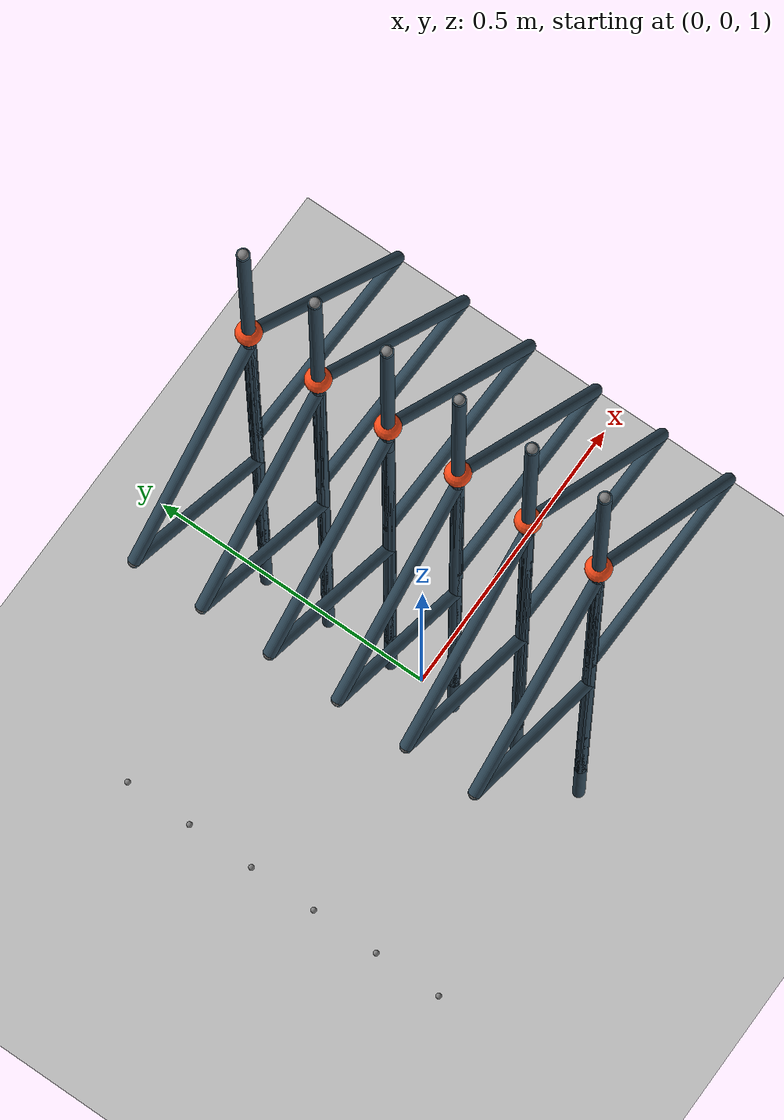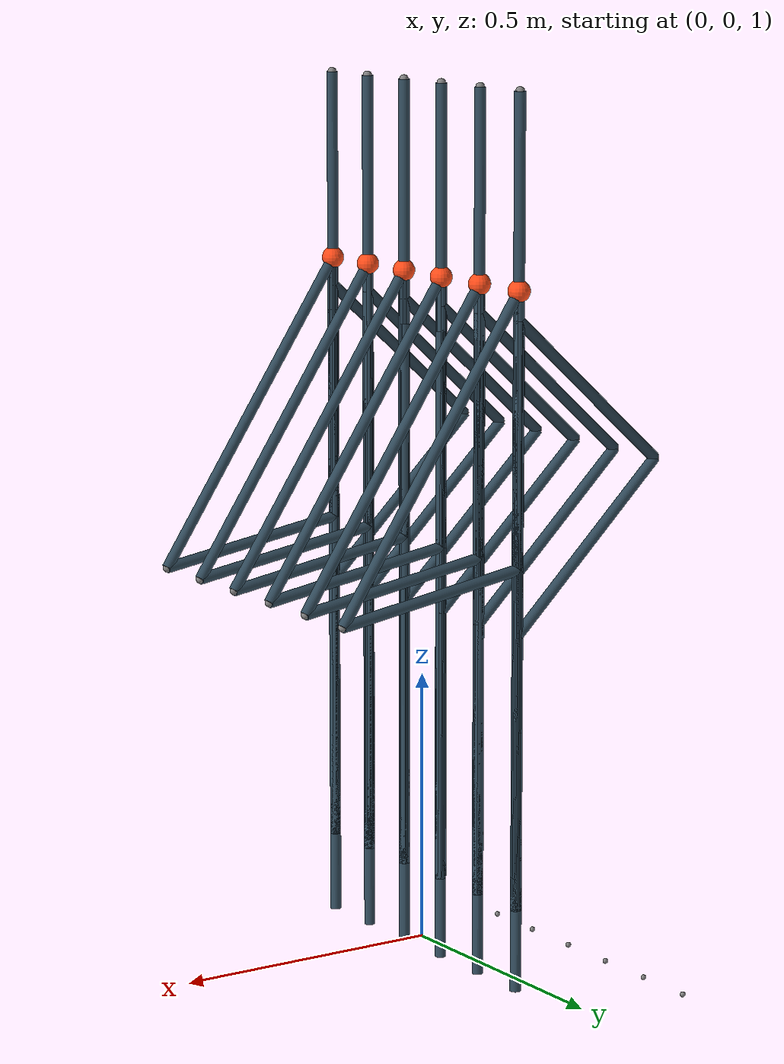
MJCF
<mujoco model="Strandbeest_AllLegs">

  <compiler angle="radian" inertiafromgeom="true" autolimits="true"/>

  <option gravity="0 0 -9.81"
          timestep="0.0005"
          integrator="implicitfast"
          iterations="800"
          solver="Newton"
          tolerance="1e-12"
          noslip_iterations="10"
          noslip_tolerance="1e-10"/>

  <visual>
    <rgba haze="0.15 0.25 0.35 1"/>
  </visual>

  <default>
    <joint damping="0.5" armature="0.005"/>
    <geom contype="0" conaffinity="0" friction="0.8 0.1 0.1" rgba="0.5 0.5 0.5 1" density="500"/>
  </default>

  <asset>
    <material name="col_2F4858" rgba="0.184 0.282 0.345 1"/>
    <material name="orange"    rgba="1.0 0.639 0.098 1"/>
  </asset>

  <worldbody>
    <body name="crossbar" pos="0 0 0.9">
      <site name="base_leg1_site" pos="-0.38 -0.30 0" size="0.005"/>
      <site name="base_leg2_site" pos="-0.38 -0.18 0" size="0.005"/>
      <site name="base_leg3_site" pos="-0.38 -0.06 0" size="0.005"/>
      <site name="base_leg4_site" pos="-0.38  0.06 0" size="0.005"/>
      <site name="base_leg5_site" pos="-0.38  0.18 0" size="0.005"/>
      <site name="base_leg6_site" pos="-0.38  0.30 0" size="0.005"/>

      <body name="crank_axle_leg1" pos="0 -0.30 0.078">
        <joint name="joint_crossbar_crank_leg1" type="hinge" axis="0 1 0"/>
        <body name="bar_m_leg1" pos="0 0 0" euler="0 0.000000 0">
          <geom name="bar_m_geom_leg1" type="cylinder" size="0.01 0.075" pos="0 0 0.075" material="col_2F4858"/>
          <body name="bar_j_leg1" pos="0 0 0.15">
            <joint name="joint_m_j_leg1" type="hinge" axis="0 1 0"/>
            <geom name="bar_j_geom_leg1" type="cylinder" size="0.01 0.25" pos="0 0 0.25" material="col_2F4858"/>
            <body name="bar_k_leg1" pos="0 0 0">
              <joint name="joint_j_k_leg1" type="hinge" axis="0 1 0"/>
              <geom name="bar_k_geom_leg1" type="cylinder" size="0.01 0.3095" pos="0 0 0.3095" material="col_2F4858"/>
              <body name="bar_c_leg1" pos="0 0 0.619">
                <joint name="joint_k_c_leg1" type="hinge" axis="0 1 0"/>
                <geom name="bar_c_geom_leg1" type="cylinder" size="0.01 0.1965" pos="0 0 0.1965" material="col_2F4858"/>
                <site name="bar_c_tip_leg1" pos="0 0 0.393" size="0.008"/>
              </body>
              <body name="bars_g_h_i_leg1" pos="0 0 0.619">
                <joint name="joint_k_i_leg1" type="hinge" axis="0 1 0"/>
                <geom name="ghi_g_leg1" type="cylinder" size="0.01 0.245" pos="0 0 0.245" material="col_2F4858"/>
                <geom name="ghi_h_leg1" type="cylinder" size="0.01 0.1835" pos="0.1812 0 -0.0291" euler="0 1.73 0" material="col_2F4858"/>
                <geom name="ghi_i_leg1" type="cylinder" size="0.01 0.3285" pos="0.1811 0 0.2159" euler="0 2.5576 0" material="col_2F4858"/>
                <geom name="foot_leg1" type="sphere" size="0.02" pos="0 0 0.49" contype="1" conaffinity="1" rgba="1.0 0.3 0.1 1"/>
                <site name="ghi_loopsite_leg1" pos="0.3624 0 -0.0582" size="0.008"/>
              </body>
            </body>
            <body name="bars_b_d_e_leg1" pos="0 0 0.50">
              <joint name="joint_j_e_leg1" type="hinge" axis="0 1 0"/>
              <geom name="bde_b_leg1" type="cylinder" size="0.01 0.279" pos="0 0 0.279" material="col_2F4858"/>
              <geom name="bde_d_leg1" type="cylinder" size="0.01 0.2005" pos="-0.1488 0 0.4236" euler="0 -2.3056 0" material="col_2F4858"/>
              <geom name="bde_e_leg1" type="cylinder" size="0.01 0.2075" pos="-0.1489 0 0.1446" euler="0 -0.8 0" material="col_2F4858"/>
              <site name="bde_loopsite_leg1" pos="-0.2978 0 0.2892" size="0.008"/>
              <body name="bar_f_leg1" pos="0 0 0.558">
                <joint name="joint_e_f_leg1" type="hinge" axis="0 1 0"/>
                <geom name="bar_f_geom_leg1" type="cylinder" size="0.01 0.197" pos="0 0 0.197" material="col_2F4858"/>
                <site name="bar_f_tip_leg1" pos="0 0 0.394" size="0.008"/>
              </body>
            </body>
          </body>
        </body>
      </body>

      <body name="crank_axle_leg2" pos="0 -0.18 0.078">
        <joint name="joint_crossbar_crank_leg2" type="hinge" axis="0 1 0"/>
        <body name="bar_m_leg2" pos="0 0 0" euler="0 0 0">
          <geom name="bar_m_geom_leg2" type="cylinder" size="0.01 0.075" pos="0 0 0.075" material="col_2F4858"/>
          <body name="bar_j_leg2" pos="0 0 0.15">
            <joint name="joint_m_j_leg2" type="hinge" axis="0 1 0"/>
            <geom name="bar_j_geom_leg2" type="cylinder" size="0.01 0.25" pos="0 0 0.25" material="col_2F4858"/>
            <body name="bar_k_leg2" pos="0 0 0">
              <joint name="joint_j_k_leg2" type="hinge" axis="0 1 0"/>
              <geom name="bar_k_geom_leg2" type="cylinder" size="0.01 0.3095" pos="0 0 0.3095" material="col_2F4858"/>
              <body name="bar_c_leg2" pos="0 0 0.619">
                <joint name="joint_k_c_leg2" type="hinge" axis="0 1 0"/>
                <geom name="bar_c_geom_leg2" type="cylinder" size="0.01 0.1965" pos="0 0 0.1965" material="col_2F4858"/>
                <site name="bar_c_tip_leg2" pos="0 0 0.393" size="0.008"/>
              </body>
              <body name="bars_g_h_i_leg2" pos="0 0 0.619">
                <joint name="joint_k_i_leg2" type="hinge" axis="0 1 0"/>
                <geom name="ghi_g_leg2" type="cylinder" size="0.01 0.245" pos="0 0 0.245" material="col_2F4858"/>
                <geom name="ghi_h_leg2" type="cylinder" size="0.01 0.1835" pos="0.1812 0 -0.0291" euler="0 1.73 0" material="col_2F4858"/>
                <geom name="ghi_i_leg2" type="cylinder" size="0.01 0.3285" pos="0.1811 0 0.2159" euler="0 2.5576 0" material="col_2F4858"/>
                <geom name="foot_leg2" type="sphere" size="0.02" pos="0 0 0.49" contype="1" conaffinity="1" rgba="1.0 0.3 0.1 1"/>
                <site name="ghi_loopsite_leg2" pos="0.3624 0 -0.0582" size="0.008"/>
              </body>
            </body>
            <body name="bars_b_d_e_leg2" pos="0 0 0.50">
              <joint name="joint_j_e_leg2" type="hinge" axis="0 1 0"/>
              <geom name="bde_b_leg2" type="cylinder" size="0.01 0.279" pos="0 0 0.279" material="col_2F4858"/>
              <geom name="bde_d_leg2" type="cylinder" size="0.01 0.2005" pos="-0.1488 0 0.4236" euler="0 -2.3056 0" material="col_2F4858"/>
              <geom name="bde_e_leg2" type="cylinder" size="0.01 0.2075" pos="-0.1489 0 0.1446" euler="0 -0.8 0" material="col_2F4858"/>
              <site name="bde_loopsite_leg2" pos="-0.2978 0 0.2892" size="0.008"/>
              <body name="bar_f_leg2" pos="0 0 0.558">
                <joint name="joint_e_f_leg2" type="hinge" axis="0 1 0"/>
                <geom name="bar_f_geom_leg2" type="cylinder" size="0.01 0.197" pos="0 0 0.197" material="col_2F4858"/>
                <site name="bar_f_tip_leg2" pos="0 0 0.394" size="0.008"/>
              </body>
            </body>
          </body>
        </body>
      </body>

      <body name="crank_axle_leg3" pos="0 -0.06 0.078">
        <joint name="joint_crossbar_crank_leg3" type="hinge" axis="0 1 0"/>
        <body name="bar_m_leg3" pos="0 0 0" euler="0 0 0">
          <geom name="bar_m_geom_leg3" type="cylinder" size="0.01 0.075" pos="0 0 0.075" material="col_2F4858"/>
          <body name="bar_j_leg3" pos="0 0 0.15">
            <joint name="joint_m_j_leg3" type="hinge" axis="0 1 0"/>
            <geom name="bar_j_geom_leg3" type="cylinder" size="0.01 0.25" pos="0 0 0.25" material="col_2F4858"/>
            <body name="bar_k_leg3" pos="0 0 0">
              <joint name="joint_j_k_leg3" type="hinge" axis="0 1 0"/>
              <geom name="bar_k_geom_leg3" type="cylinder" size="0.01 0.3095" pos="0 0 0.3095" material="col_2F4858"/>
              <body name="bar_c_leg3" pos="0 0 0.619">
                <joint name="joint_k_c_leg3" type="hinge" axis="0 1 0"/>
                <geom name="bar_c_geom_leg3" type="cylinder" size="0.01 0.1965" pos="0 0 0.1965" material="col_2F4858"/>
                <site name="bar_c_tip_leg3" pos="0 0 0.393" size="0.008"/>
              </body>
              <body name="bars_g_h_i_leg3" pos="0 0 0.619">
                <joint name="joint_k_i_leg3" type="hinge" axis="0 1 0"/>
                <geom name="ghi_g_leg3" type="cylinder" size="0.01 0.245" pos="0 0 0.245" material="col_2F4858"/>
                <geom name="ghi_h_leg3" type="cylinder" size="0.01 0.1835" pos="0.1812 0 -0.0291" euler="0 1.73 0" material="col_2F4858"/>
                <geom name="ghi_i_leg3" type="cylinder" size="0.01 0.3285" pos="0.1811 0 0.2159" euler="0 2.5576 0" material="col_2F4858"/>
                <geom name="foot_leg3" type="sphere" size="0.02" pos="0 0 0.49" contype="1" conaffinity="1" rgba="1.0 0.3 0.1 1"/>
                <site name="ghi_loopsite_leg3" pos="0.3624 0 -0.0582" size="0.008"/>
              </body>
            </body>
            <body name="bars_b_d_e_leg3" pos="0 0 0.50">
              <joint name="joint_j_e_leg3" type="hinge" axis="0 1 0"/>
              <geom name="bde_b_leg3" type="cylinder" size="0.01 0.279" pos="0 0 0.279" material="col_2F4858"/>
              <geom name="bde_d_leg3" type="cylinder" size="0.01 0.2005" pos="-0.1488 0 0.4236" euler="0 -2.3056 0" material="col_2F4858"/>
              <geom name="bde_e_leg3" type="cylinder" size="0.01 0.2075" pos="-0.1489 0 0.1446" euler="0 -0.8 0" material="col_2F4858"/>
              <site name="bde_loopsite_leg3" pos="-0.2978 0 0.2892" size="0.008"/>
              <body name="bar_f_leg3" pos="0 0 0.558">
                <joint name="joint_e_f_leg3" type="hinge" axis="0 1 0"/>
                <geom name="bar_f_geom_leg3" type="cylinder" size="0.01 0.197" pos="0 0 0.197" material="col_2F4858"/>
                <site name="bar_f_tip_leg3" pos="0 0 0.394" size="0.008"/>
              </body>
            </body>
          </body>
        </body>
      </body>

      <body name="crank_axle_leg4" pos="0 0.06 0.078">
        <joint name="joint_crossbar_crank_leg4" type="hinge" axis="0 1 0"/>
        <body name="bar_m_leg4" pos="0 0 0" euler="0 0 0">
          <geom name="bar_m_geom_leg4" type="cylinder" size="0.01 0.075" pos="0 0 0.075" material="col_2F4858"/>
          <body name="bar_j_leg4" pos="0 0 0.15">
            <joint name="joint_m_j_leg4" type="hinge" axis="0 1 0"/>
            <geom name="bar_j_geom_leg4" type="cylinder" size="0.01 0.25" pos="0 0 0.25" material="col_2F4858"/>
            <body name="bar_k_leg4" pos="0 0 0">
              <joint name="joint_j_k_leg4" type="hinge" axis="0 1 0"/>
              <geom name="bar_k_geom_leg4" type="cylinder" size="0.01 0.3095" pos="0 0 0.3095" material="col_2F4858"/>
              <body name="bar_c_leg4" pos="0 0 0.619">
                <joint name="joint_k_c_leg4" type="hinge" axis="0 1 0"/>
                <geom name="bar_c_geom_leg4" type="cylinder" size="0.01 0.1965" pos="0 0 0.1965" material="col_2F4858"/>
                <site name="bar_c_tip_leg4" pos="0 0 0.393" size="0.008"/>
              </body>
              <body name="bars_g_h_i_leg4" pos="0 0 0.619">
                <joint name="joint_k_i_leg4" type="hinge" axis="0 1 0"/>
                <geom name="ghi_g_leg4" type="cylinder" size="0.01 0.245" pos="0 0 0.245" material="col_2F4858"/>
                <geom name="ghi_h_leg4" type="cylinder" size="0.01 0.1835" pos="0.1812 0 -0.0291" euler="0 1.73 0" material="col_2F4858"/>
                <geom name="ghi_i_leg4" type="cylinder" size="0.01 0.3285" pos="0.1811 0 0.2159" euler="0 2.5576 0" material="col_2F4858"/>
                <geom name="foot_leg4" type="sphere" size="0.02" pos="0 0 0.49" contype="1" conaffinity="1" rgba="1.0 0.3 0.1 1"/>
                <site name="ghi_loopsite_leg4" pos="0.3624 0 -0.0582" size="0.008"/>
              </body>
            </body>
            <body name="bars_b_d_e_leg4" pos="0 0 0.50">
              <joint name="joint_j_e_leg4" type="hinge" axis="0 1 0"/>
              <geom name="bde_b_leg4" type="cylinder" size="0.01 0.279" pos="0 0 0.279" material="col_2F4858"/>
              <geom name="bde_d_leg4" type="cylinder" size="0.01 0.2005" pos="-0.1488 0 0.4236" euler="0 -2.3056 0" material="col_2F4858"/>
              <geom name="bde_e_leg4" type="cylinder" size="0.01 0.2075" pos="-0.1489 0 0.1446" euler="0 -0.8 0" material="col_2F4858"/>
              <site name="bde_loopsite_leg4" pos="-0.2978 0 0.2892" size="0.008"/>
              <body name="bar_f_leg4" pos="0 0 0.558">
                <joint name="joint_e_f_leg4" type="hinge" axis="0 1 0"/>
                <geom name="bar_f_geom_leg4" type="cylinder" size="0.01 0.197" pos="0 0 0.197" material="col_2F4858"/>
                <site name="bar_f_tip_leg4" pos="0 0 0.394" size="0.008"/>
              </body>
            </body>
          </body>
        </body>
      </body>

      <body name="crank_axle_leg5" pos="0 0.18 0.078">
        <joint name="joint_crossbar_crank_leg5" type="hinge" axis="0 1 0"/>
        <body name="bar_m_leg5" pos="0 0 0" euler="0 0 0">
          <geom name="bar_m_geom_leg5" type="cylinder" size="0.01 0.075" pos="0 0 0.075" material="col_2F4858"/>
          <body name="bar_j_leg5" pos="0 0 0.15">
            <joint name="joint_m_j_leg5" type="hinge" axis="0 1 0"/>
            <geom name="bar_j_geom_leg5" type="cylinder" size="0.01 0.25" pos="0 0 0.25" material="col_2F4858"/>
            <body name="bar_k_leg5" pos="0 0 0">
              <joint name="joint_j_k_leg5" type="hinge" axis="0 1 0"/>
              <geom name="bar_k_geom_leg5" type="cylinder" size="0.01 0.3095" pos="0 0 0.3095" material="col_2F4858"/>
              <body name="bar_c_leg5" pos="0 0 0.619">
                <joint name="joint_k_c_leg5" type="hinge" axis="0 1 0"/>
                <geom name="bar_c_geom_leg5" type="cylinder" size="0.01 0.1965" pos="0 0 0.1965" material="col_2F4858"/>
                <site name="bar_c_tip_leg5" pos="0 0 0.393" size="0.008"/>
              </body>
              <body name="bars_g_h_i_leg5" pos="0 0 0.619">
                <joint name="joint_k_i_leg5" type="hinge" axis="0 1 0"/>
                <geom name="ghi_g_leg5" type="cylinder" size="0.01 0.245" pos="0 0 0.245" material="col_2F4858"/>
                <geom name="ghi_h_leg5" type="cylinder" size="0.01 0.1835" pos="0.1812 0 -0.0291" euler="0 1.73 0" material="col_2F4858"/>
                <geom name="ghi_i_leg5" type="cylinder" size="0.01 0.3285" pos="0.1811 0 0.2159" euler="0 2.5576 0" material="col_2F4858"/>
                <geom name="foot_leg5" type="sphere" size="0.02" pos="0 0 0.49" contype="1" conaffinity="1" rgba="1.0 0.3 0.1 1"/>
                <site name="ghi_loopsite_leg5" pos="0.3624 0 -0.0582" size="0.008"/>
              </body>
            </body>
            <body name="bars_b_d_e_leg5" pos="0 0 0.50">
              <joint name="joint_j_e_leg5" type="hinge" axis="0 1 0"/>
              <geom name="bde_b_leg5" type="cylinder" size="0.01 0.279" pos="0 0 0.279" material="col_2F4858"/>
              <geom name="bde_d_leg5" type="cylinder" size="0.01 0.2005" pos="-0.1488 0 0.4236" euler="0 -2.3056 0" material="col_2F4858"/>
              <geom name="bde_e_leg5" type="cylinder" size="0.01 0.2075" pos="-0.1489 0 0.1446" euler="0 -0.8 0" material="col_2F4858"/>
              <site name="bde_loopsite_leg5" pos="-0.2978 0 0.2892" size="0.008"/>
              <body name="bar_f_leg5" pos="0 0 0.558">
                <joint name="joint_e_f_leg5" type="hinge" axis="0 1 0"/>
                <geom name="bar_f_geom_leg5" type="cylinder" size="0.01 0.197" pos="0 0 0.197" material="col_2F4858"/>
                <site name="bar_f_tip_leg5" pos="0 0 0.394" size="0.008"/>
              </body>
            </body>
          </body>
        </body>
      </body>

      <body name="crank_axle_leg6" pos="0 0.30 0.078">
        <joint name="joint_crossbar_crank_leg6" type="hinge" axis="0 1 0"/>
        <body name="bar_m_leg6" pos="0 0 0" euler="0 0 0">
          <geom name="bar_m_geom_leg6" type="cylinder" size="0.01 0.075" pos="0 0 0.075" material="col_2F4858"/>
          <body name="bar_j_leg6" pos="0 0 0.15">
            <joint name="joint_m_j_leg6" type="hinge" axis="0 1 0"/>
            <geom name="bar_j_geom_leg6" type="cylinder" size="0.01 0.25" pos="0 0 0.25" material="col_2F4858"/>
            <body name="bar_k_leg6" pos="0 0 0">
              <joint name="joint_j_k_leg6" type="hinge" axis="0 1 0"/>
              <geom name="bar_k_geom_leg6" type="cylinder" size="0.01 0.3095" pos="0 0 0.3095" material="col_2F4858"/>
              <body name="bar_c_leg6" pos="0 0 0.619">
                <joint name="joint_k_c_leg6" type="hinge" axis="0 1 0"/>
                <geom name="bar_c_geom_leg6" type="cylinder" size="0.01 0.1965" pos="0 0 0.1965" material="col_2F4858"/>
                <site name="bar_c_tip_leg6" pos="0 0 0.393" size="0.008"/>
              </body>
              <body name="bars_g_h_i_leg6" pos="0 0 0.619">
                <joint name="joint_k_i_leg6" type="hinge" axis="0 1 0"/>
                <geom name="ghi_g_leg6" type="cylinder" size="0.01 0.245" pos="0 0 0.245" material="col_2F4858"/>
                <geom name="ghi_h_leg6" type="cylinder" size="0.01 0.1835" pos="0.1812 0 -0.0291" euler="0 1.73 0" material="col_2F4858"/>
                <geom name="ghi_i_leg6" type="cylinder" size="0.01 0.3285" pos="0.1811 0 0.2159" euler="0 2.5576 0" material="col_2F4858"/>
                <geom name="foot_leg6" type="sphere" size="0.02" pos="0 0 0.49" contype="1" conaffinity="1" rgba="1.0 0.3 0.1 1"/>
                <site name="ghi_loopsite_leg6" pos="0.3624 0 -0.0582" size="0.008"/>
              </body>
            </body>
            <body name="bars_b_d_e_leg6" pos="0 0 0.50">
              <joint name="joint_j_e_leg6" type="hinge" axis="0 1 0"/>
              <geom name="bde_b_leg6" type="cylinder" size="0.01 0.279" pos="0 0 0.279" material="col_2F4858"/>
              <geom name="bde_d_leg6" type="cylinder" size="0.01 0.2005" pos="-0.1488 0 0.4236" euler="0 -2.3056 0" material="col_2F4858"/>
              <geom name="bde_e_leg6" type="cylinder" size="0.01 0.2075" pos="-0.1489 0 0.1446" euler="0 -0.8 0" material="col_2F4858"/>
              <site name="bde_loopsite_leg6" pos="-0.2978 0 0.2892" size="0.008"/>
              <body name="bar_f_leg6" pos="0 0 0.558">
                <joint name="joint_e_f_leg6" type="hinge" axis="0 1 0"/>
                <geom name="bar_f_geom_leg6" type="cylinder" size="0.01 0.197" pos="0 0 0.197" material="col_2F4858"/>
                <site name="bar_f_tip_leg6" pos="0 0 0.394" size="0.008"/>
              </body>
            </body>
          </body>
        </body>
      </body>

    </body>

    <geom name="ground" type="plane" size="5 5 0.1" pos="0 0 0" rgba="0.75 0.75 0.75 1" contype="1" conaffinity="1"/>
  </worldbody>

  <actuator>
    <velocity name="crank_motor_leg1" joint="joint_crossbar_crank_leg1" gear="1" kv="200" ctrllimited="true" ctrlrange="-20 20"/>
    <velocity name="crank_motor_leg2" joint="joint_crossbar_crank_leg2" gear="1" kv="200" ctrllimited="true" ctrlrange="-20 20"/>
    <velocity name="crank_motor_leg3" joint="joint_crossbar_crank_leg3" gear="1" kv="200" ctrllimited="true" ctrlrange="-20 20"/>
    <velocity name="crank_motor_leg4" joint="joint_crossbar_crank_leg4" gear="1" kv="200" ctrllimited="true" ctrlrange="-20 20"/>
    <velocity name="crank_motor_leg5" joint="joint_crossbar_crank_leg5" gear="1" kv="200" ctrllimited="true" ctrlrange="-20 20"/>
    <velocity name="crank_motor_leg6" joint="joint_crossbar_crank_leg6" gear="1" kv="200" ctrllimited="true" ctrlrange="-20 20"/>
  </actuator>

  <equality>
    <connect name="loop_f_g_leg1" site1="bar_f_tip_leg1" site2="ghi_loopsite_leg1" solimp="0.99 0.999 0.0001 0.5 2" solref="0.005 1"/>
    <connect name="loop_b_c_leg1" site1="bde_loopsite_leg1" site2="bar_c_tip_leg1" solimp="0.99 0.999 0.0001 0.5 2" solref="0.005 1"/>
    <connect name="loop_a_c_leg1" site1="base_leg1_site" site2="bar_c_tip_leg1" solimp="0.99 0.999 0.0001 0.5 2" solref="0.005 1"/>

    <connect name="loop_f_g_leg2" site1="bar_f_tip_leg2" site2="ghi_loopsite_leg2" solimp="0.99 0.999 0.0001 0.5 2" solref="0.005 1"/>
    <connect name="loop_b_c_leg2" site1="bde_loopsite_leg2" site2="bar_c_tip_leg2" solimp="0.99 0.999 0.0001 0.5 2" solref="0.005 1"/>
    <connect name="loop_a_c_leg2" site1="base_leg2_site" site2="bar_c_tip_leg2" solimp="0.99 0.999 0.0001 0.5 2" solref="0.005 1"/>

    <connect name="loop_f_g_leg3" site1="bar_f_tip_leg3" site2="ghi_loopsite_leg3" solimp="0.99 0.999 0.0001 0.5 2" solref="0.005 1"/>
    <connect name="loop_b_c_leg3" site1="bde_loopsite_leg3" site2="bar_c_tip_leg3" solimp="0.99 0.999 0.0001 0.5 2" solref="0.005 1"/>
    <connect name="loop_a_c_leg3" site1="base_leg3_site" site2="bar_c_tip_leg3" solimp="0.99 0.999 0.0001 0.5 2" solref="0.005 1"/>

    <connect name="loop_f_g_leg4" site1="bar_f_tip_leg4" site2="ghi_loopsite_leg4" solimp="0.99 0.999 0.0001 0.5 2" solref="0.005 1"/>
    <connect name="loop_b_c_leg4" site1="bde_loopsite_leg4" site2="bar_c_tip_leg4" solimp="0.99 0.999 0.0001 0.5 2" solref="0.005 1"/>
    <connect name="loop_a_c_leg4" site1="base_leg4_site" site2="bar_c_tip_leg4" solimp="0.99 0.999 0.0001 0.5 2" solref="0.005 1"/>

    <connect name="loop_f_g_leg5" site1="bar_f_tip_leg5" site2="ghi_loopsite_leg5" solimp="0.99 0.999 0.0001 0.5 2" solref="0.005 1"/>
    <connect name="loop_b_c_leg5" site1="bde_loopsite_leg5" site2="bar_c_tip_leg5" solimp="0.99 0.999 0.0001 0.5 2" solref="0.005 1"/>
    <connect name="loop_a_c_leg5" site1="base_leg5_site" site2="bar_c_tip_leg5" solimp="0.99 0.999 0.0001 0.5 2" solref="0.005 1"/>

    <connect name="loop_f_g_leg6" site1="bar_f_tip_leg6" site2="ghi_loopsite_leg6" solimp="0.99 0.999 0.0001 0.5 2" solref="0.005 1"/>
    <connect name="loop_b_c_leg6" site1="bde_loopsite_leg6" site2="bar_c_tip_leg6" solimp="0.99 0.999 0.0001 0.5 2" solref="0.005 1"/>
    <connect name="loop_a_c_leg6" site1="base_leg6_site" site2="bar_c_tip_leg6" solimp="0.99 0.999 0.0001 0.5 2" solref="0.005 1"/>
  </equality>

  <keyframe>
    <key name="init"
         qpos="
0.000000 -1.207374 -1.588355 2.347982 -0.620345 -1.346172 -1.127636
0.000000 -1.207374 -1.588355 2.347982 -0.620345 -1.346172 -1.127636
0.000000 -1.207374 -1.588355 2.347982 -0.620345 -1.346172 -1.127636
0.000000 -1.207374 -1.588355 2.347982 -0.620345 -1.346172 -1.127636
0.000000 -1.207374 -1.588355 2.347982 -0.620345 -1.346172 -1.127636
0.000000 -1.207374 -1.588355 2.347982 -0.620345 -1.346172 -1.127636
"/>
  </keyframe>

</mujoco>
